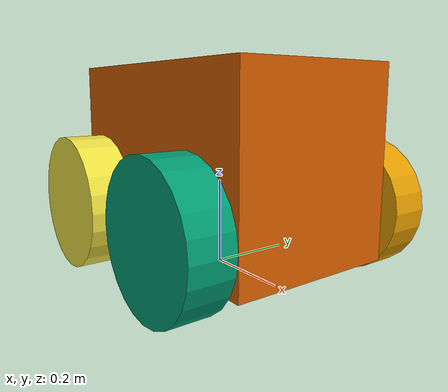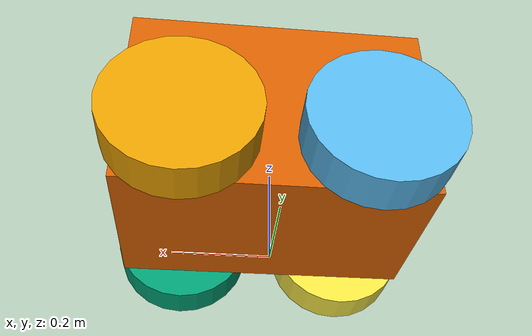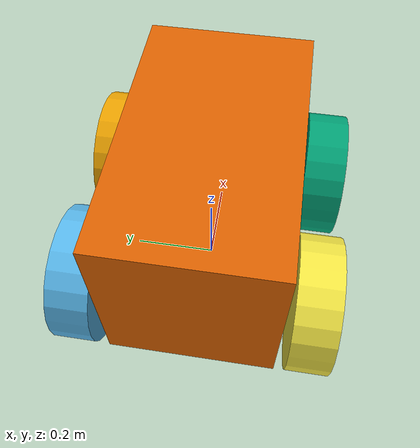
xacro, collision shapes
<?xml version="1.0"?>
<robot xmlns:xacro="http://www.ros.org/wiki/xacro" name="atrvjr_ur5">
    <xacro:macro name="atrvjr" params="armConnectionFrame">

    <!-- xacro parameters -->
    <xacro:property name="M_PI" value="3.14159"/>
    <!-- Robot parameters -->
    <xacro:property name="center_height" value="0.1525" />
    <!-- This is not including the bumpers -->
    <xacro:property name="chassis_length" value="0.64" />
    <!-- This is including the bumpers -->
    <xacro:property name="chassis_length_bumpers" value="0.78" />
    <!-- This is not including the wheels -->
    <xacro:property name="chassis_width" value="0.385" />
    <!-- This is not including equipment and racks on the top -->
    <xacro:property name="chassis_height" value="0.42" />
    <!-- Wheel properties -->
    <xacro:property name="wheel_radius" value="0.155"/>
    <xacro:property name="wheel_width" value="0.095"/>
    <xacro:property name="wheel_base" value="0.38"/> <!-- aka distance between axis -->

    <!-- xacro macros -->
    <xacro:macro name="default_inertial" params="mass">
        <inertial>
        <mass value="${mass}" />
        <inertia ixx="1.0" ixy="0.0" ixz="0.0"
                iyy="1.0" iyz="0.0"
                izz="1.0" />
        </inertial>
    </xacro:macro>

    <xacro:macro name="wheel" params="prefix reflect_x reflect_y">
        <link name="${prefix}_wheel_link">
            <xacro:default_inertial mass="1"/>

            <collision>
                <origin xyz="0 0 ${wheel_width/2}" rpy="0 0 0" />
                <geometry>
                    <cylinder radius="${wheel_radius}" length="${wheel_width}"/>
                </geometry>
            </collision>
        </link>

        <!-- base_link -> ${prefix}_wheel_link -->
        <joint name="${prefix}_wheel_joint" type="fixed">
            <parent link="center_link"/>
            <child link="${prefix}_wheel_link"/>
            <origin xyz="${(wheel_base/2)*reflect_x} ${(chassis_width/2 + 0.02)*reflect_y} 0"
            rpy="${(M_PI/2)*reflect_y*-1} 0 0"/>
        </joint>
    </xacro:macro>

    <!-- left_front_wheel_link -->
    <xacro:wheel prefix="left_front" reflect_x="1" reflect_y="1" />
    <!-- left_rear_wheel_link -->
    <xacro:wheel prefix="left_rear" reflect_x="-1" reflect_y="1" />
    <!-- right_front_wheel_link -->
    <xacro:wheel prefix="right_front" reflect_x="1" reflect_y="-1" />
    <!-- right_rear_wheel_link -->
    <xacro:wheel prefix="right_rear" reflect_x="-1" reflect_y="-1" />

    <!-- links -->
    <!-- base_link -->
    <!-- The frame of the floor directly below the center_link and -->
    <!-- is needed for the navigation stack to work properly -->
    <link name="base_link"></link>

    <!-- center_link -->
    <!-- The link that is the origin of all of the components of the -->
    <!-- robot and should also represent the main chassis via inertial, -->
    <!-- visual, and geometry elements of the link -->
    <link name="center_link">
        <xacro:default_inertial mass="50"/>

        <visual>
            <geometry>
                <mesh filename="package://atrvjr_description/meshes/atrvjr_chassis_v5.dae"/>
            </geometry>
        </visual>

        <collision>
            <origin xyz="0 0 ${chassis_height/2.0 - 0.10}" rpy="0 0 0" />
            <geometry>
                <box size="${chassis_length} ${chassis_width} ${chassis_height}" />
            </geometry>
        </collision>
    </link>

    <!-- base_link -> center_link -->
    <joint name="base_link_joint" type="fixed">
        <origin xyz="0 0 ${center_height}" rpy="0 0 0"/>
        <parent link="base_link"/>
        <child link="center_link"/>
    </joint>

    <!-- Crossbow Imu Link -->
    <link name="cbimu_frame"/>

    <joint name="base_cbimu_joint" type="fixed">
        <origin xyz="0 0 0.267" rpy="0 ${M_PI} 0"/>
        <parent link="center_link"/>
        <child link="cbimu_frame"/>
    </joint>

        <!-- MPU Imu Link -->
    <link name="mpuimu_frame"/>

    <joint name="base_mpuimu_joint" type="fixed">
        <origin xyz="0 0 0.35" rpy="0 0 ${M_PI/2.0}"/>
        <parent link="center_link"/>
        <child link="mpuimu_frame"/>
    </joint>

    <!-- Arm Link -->
    <link name="${armConnectionFrame}"/>

    <joint name="$to_{armConnectionFrame}_joint" type="fixed">
        <origin xyz="0 0 0.40" rpy="0 0 0"/>
        <parent link="center_link"/>
        <child link="${armConnectionFrame}"/>
    </joint>

    <!-- Hokuyo Link -->
    <link name="lrf_frame"/>

    <joint name="lrf_joint" type="fixed">
        <origin xyz="0.2 0 0.35" rpy="0 0 0"/>
        <parent link="center_link"/>
        <child link="lrf_frame"/>
    </joint>

    <!-- Hokuyo Link -->
    <link name="novatel"/>

    <joint name="novatel_joint" type="fixed">
        <origin xyz="-0.15 0.1 0.4" rpy="0 0 0"/>
        <parent link="center_link"/>
        <child link="novatel"/>
    </joint>

    </xacro:macro>

    <xacro:macro name="ur5" params="baseframe">
        <!-- common stuff -->
        <xacro:include filename="$(find ur_description)/urdf/common.gazebo.xacro" />

        <!-- ur5 -->
        <xacro:include filename="$(find ur_description)/urdf/ur5.urdf.xacro" />

        <!-- arm -->
        <xacro:ur5_robot prefix="ur5_" joint_limited="false"/>

        <joint name="$from_{baseframe}_joint" type="fixed">
            <parent link="${baseframe}" />
            <child link = "ur5_base_link" />
            <origin xyz="0.0 0.0 0.0" rpy="0.0 0.0 0.0" />
        </joint>
    </xacro:macro>

    <xacro:atrvjr armConnectionFrame="arm_base_frame" />
</robot>
